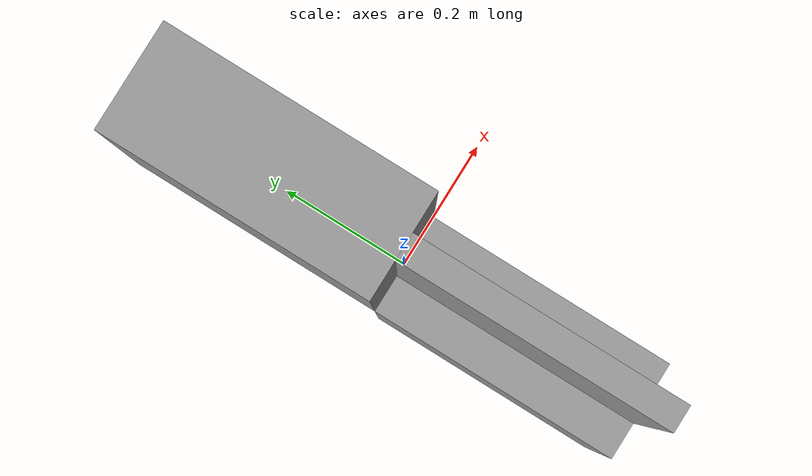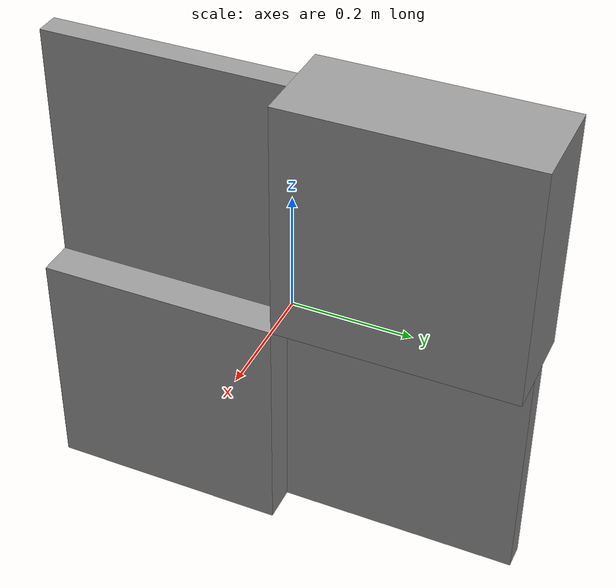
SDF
<?xml version='1.0'?>
<sdf version='1.5'>
  <model name='wall_slate'>
    <static>true</static>
    <link name='link_0'>
      <inertial>
        <mass>1.0</mass>
      </inertial>
      <pose>0 0 0 0 -0 0</pose>
      <gravity>0</gravity>
      <self_collide>0</self_collide>
      <kinematic>0</kinematic>
      <enable_wind>0</enable_wind>
      <visual name='visual'>
        <pose>0 0.2 0.2 0 -0 0</pose>
        <geometry>
          <box>
            <size>0.16 0.4 0.4</size>
          </box>
        </geometry>
        <material>
          <lighting>1</lighting>
          <script>
            <uri>file://media/materials/scripts/gazebo.material</uri>
            <name>Gazebo/Grey</name>
          </script>
          <shader type='pixel'>
            <normal_map>__default__</normal_map>
          </shader>
          <ambient>0.3 0.3 0.3 1</ambient>
          <diffuse>0.7 0.7 0.7 1</diffuse>
          <specular>0.01 0.01 0.01 1</specular>
          <emissive>0 0 0 1</emissive>
        </material>
        <transparency>0</transparency>
        <cast_shadows>1</cast_shadows>
      </visual>
      <visual name='ModelPreview_0::link_0::visual_1'>
        <pose>0 0.2 -0.2 0 -0 0</pose>
        <geometry>
          <box>
            <size>0.04 0.4 0.4</size>
          </box>
        </geometry>
        <material>
          <lighting>1</lighting>
          <script>
            <uri>file://media/materials/scripts/gazebo.material</uri>
            <name>Gazebo/Grey</name>
          </script>
          <shader type='pixel'>
            <normal_map>__default__</normal_map>
          </shader>
          <ambient>0.3 0.3 0.3 1</ambient>
          <diffuse>0.7 0.7 0.7 1</diffuse>
          <specular>0.01 0.01 0.01 1</specular>
          <emissive>0 0 0 1</emissive>
        </material>
        <transparency>0</transparency>
        <cast_shadows>1</cast_shadows>
      </visual>
      <visual name='ModelPreview_0::link_0::visual_2'>
        <pose>0 -0.2 0.2 0 -0 0</pose>
        <geometry>
          <box>
            <size>0.04 0.4 0.4</size>
          </box>
        </geometry>
        <material>
          <lighting>1</lighting>
          <script>
            <uri>file://media/materials/scripts/gazebo.material</uri>
            <name>Gazebo/Grey</name>
          </script>
          <shader type='pixel'>
            <normal_map>__default__</normal_map>
          </shader>
          <ambient>0.3 0.3 0.3 1</ambient>
          <diffuse>0.7 0.7 0.7 1</diffuse>
          <specular>0.01 0.01 0.01 1</specular>
          <emissive>0 0 0 1</emissive>
        </material>
        <transparency>0</transparency>
        <cast_shadows>1</cast_shadows>
      </visual>
      <visual name='ModelPreview_0::link_0::visual_3'>
        <pose>0 -0.2 -0.2 0 -0 0</pose>
        <geometry>
          <box>
            <size>0.16 0.4 0.4</size>
          </box>
        </geometry>
        <material>
          <lighting>1</lighting>
          <script>
            <uri>file://media/materials/scripts/gazebo.material</uri>
            <name>Gazebo/Grey</name>
          </script>
          <shader type='pixel'>
            <normal_map>__default__</normal_map>
          </shader>
          <ambient>0.3 0.3 0.3 1</ambient>
          <diffuse>0.7 0.7 0.7 1</diffuse>
          <specular>0.01 0.01 0.01 1</specular>
          <emissive>0 0 0 1</emissive>
        </material>
        <transparency>0</transparency>
        <cast_shadows>1</cast_shadows>
      </visual>
      <collision name='collision_2'>
        <laser_retro>0</laser_retro>
        <max_contacts>10</max_contacts>
        <pose>0 -0.2 0.2 0 -0 0</pose>
        <geometry>
          <box>
            <size>0.04 0.4 0.4</size>
          </box>
        </geometry>
        <surface>
          <friction>
            <ode>
              <mu>1</mu>
              <mu2>1</mu2>
              <fdir1>0 0 0</fdir1>
              <slip1>0</slip1>
              <slip2>0</slip2>
            </ode>
            <torsional>
              <coefficient>1</coefficient>
              <patch_radius>0</patch_radius>
              <surface_radius>0</surface_radius>
              <use_patch_radius>1</use_patch_radius>
              <ode>
                <slip>0</slip>
              </ode>
            </torsional>
          </friction>
          <bounce>
            <restitution_coefficient>0</restitution_coefficient>
            <threshold>1e+06</threshold>
          </bounce>
          <contact>
            <collide_without_contact>0</collide_without_contact>
            <collide_without_contact_bitmask>1</collide_without_contact_bitmask>
            <collide_bitmask>1</collide_bitmask>
            <ode>
              <soft_cfm>0</soft_cfm>
              <soft_erp>0.2</soft_erp>
              <kp>1e+13</kp>
              <kd>1</kd>
              <max_vel>0.01</max_vel>
              <min_depth>0</min_depth>
            </ode>
            <bullet>
              <split_impulse>1</split_impulse>
              <split_impulse_penetration_threshold>-0.01</split_impulse_penetration_threshold>
              <soft_cfm>0</soft_cfm>
              <soft_erp>0.2</soft_erp>
              <kp>1e+13</kp>
              <kd>1</kd>
            </bullet>
          </contact>
        </surface>
      </collision>
      <collision name='collision_1'>
        <laser_retro>0</laser_retro>
        <max_contacts>10</max_contacts>
        <pose>0 0.2 -0.2 0 -0 0</pose>
        <geometry>
          <box>
            <size>0.04 0.4 0.4</size>
          </box>
        </geometry>
        <surface>
          <friction>
            <ode>
              <mu>1</mu>
              <mu2>1</mu2>
              <fdir1>0 0 0</fdir1>
              <slip1>0</slip1>
              <slip2>0</slip2>
            </ode>
            <torsional>
              <coefficient>1</coefficient>
              <patch_radius>0</patch_radius>
              <surface_radius>0</surface_radius>
              <use_patch_radius>1</use_patch_radius>
              <ode>
                <slip>0</slip>
              </ode>
            </torsional>
          </friction>
          <bounce>
            <restitution_coefficient>0</restitution_coefficient>
            <threshold>1e+06</threshold>
          </bounce>
          <contact>
            <collide_without_contact>0</collide_without_contact>
            <collide_without_contact_bitmask>1</collide_without_contact_bitmask>
            <collide_bitmask>1</collide_bitmask>
            <ode>
              <soft_cfm>0</soft_cfm>
              <soft_erp>0.2</soft_erp>
              <kp>1e+13</kp>
              <kd>1</kd>
              <max_vel>0.01</max_vel>
              <min_depth>0</min_depth>
            </ode>
            <bullet>
              <split_impulse>1</split_impulse>
              <split_impulse_penetration_threshold>-0.01</split_impulse_penetration_threshold>
              <soft_cfm>0</soft_cfm>
              <soft_erp>0.2</soft_erp>
              <kp>1e+13</kp>
              <kd>1</kd>
            </bullet>
          </contact>
        </surface>
      </collision>
      <collision name='collision_4'>
        <laser_retro>0</laser_retro>
        <max_contacts>10</max_contacts>
        <pose>0 0.2 0.2 0 -0 0</pose>
        <geometry>
          <box>
            <size>0.16 0.4 0.4</size>
          </box>
        </geometry>
        <surface>
          <friction>
            <ode>
              <mu>1</mu>
              <mu2>1</mu2>
              <fdir1>0 0 0</fdir1>
              <slip1>0</slip1>
              <slip2>0</slip2>
            </ode>
            <torsional>
              <coefficient>1</coefficient>
              <patch_radius>0</patch_radius>
              <surface_radius>0</surface_radius>
              <use_patch_radius>1</use_patch_radius>
              <ode>
                <slip>0</slip>
              </ode>
            </torsional>
          </friction>
          <bounce>
            <restitution_coefficient>0</restitution_coefficient>
            <threshold>1e+06</threshold>
          </bounce>
          <contact>
            <collide_without_contact>0</collide_without_contact>
            <collide_without_contact_bitmask>1</collide_without_contact_bitmask>
            <collide_bitmask>1</collide_bitmask>
            <ode>
              <soft_cfm>0</soft_cfm>
              <soft_erp>0.2</soft_erp>
              <kp>1e+13</kp>
              <kd>1</kd>
              <max_vel>0.01</max_vel>
              <min_depth>0</min_depth>
            </ode>
            <bullet>
              <split_impulse>1</split_impulse>
              <split_impulse_penetration_threshold>-0.01</split_impulse_penetration_threshold>
              <soft_cfm>0</soft_cfm>
              <soft_erp>0.2</soft_erp>
              <kp>1e+13</kp>
              <kd>1</kd>
            </bullet>
          </contact>
        </surface>
      </collision>
      <collision name='collision_3'>
        <laser_retro>0</laser_retro>
        <max_contacts>10</max_contacts>
        <pose>0 -0.2 -0.2 0 -0 0</pose>
        <geometry>
          <box>
            <size>0.16 0.4 0.4</size>
          </box>
        </geometry>
        <surface>
          <friction>
            <ode>
              <mu>1</mu>
              <mu2>1</mu2>
              <fdir1>0 0 0</fdir1>
              <slip1>0</slip1>
              <slip2>0</slip2>
            </ode>
            <torsional>
              <coefficient>1</coefficient>
              <patch_radius>0</patch_radius>
              <surface_radius>0</surface_radius>
              <use_patch_radius>1</use_patch_radius>
              <ode>
                <slip>0</slip>
              </ode>
            </torsional>
          </friction>
          <bounce>
            <restitution_coefficient>0</restitution_coefficient>
            <threshold>1e+06</threshold>
          </bounce>
          <contact>
            <collide_without_contact>0</collide_without_contact>
            <collide_without_contact_bitmask>1</collide_without_contact_bitmask>
            <collide_bitmask>1</collide_bitmask>
            <ode>
              <soft_cfm>0</soft_cfm>
              <soft_erp>0.2</soft_erp>
              <kp>1e+13</kp>
              <kd>1</kd>
              <max_vel>0.01</max_vel>
              <min_depth>0</min_depth>
            </ode>
            <bullet>
              <split_impulse>1</split_impulse>
              <split_impulse_penetration_threshold>-0.01</split_impulse_penetration_threshold>
              <soft_cfm>0</soft_cfm>
              <soft_erp>0.2</soft_erp>
              <kp>1e+13</kp>
              <kd>1</kd>
            </bullet>
          </contact>
        </surface>
      </collision>
    </link>
  </model>
</sdf>
